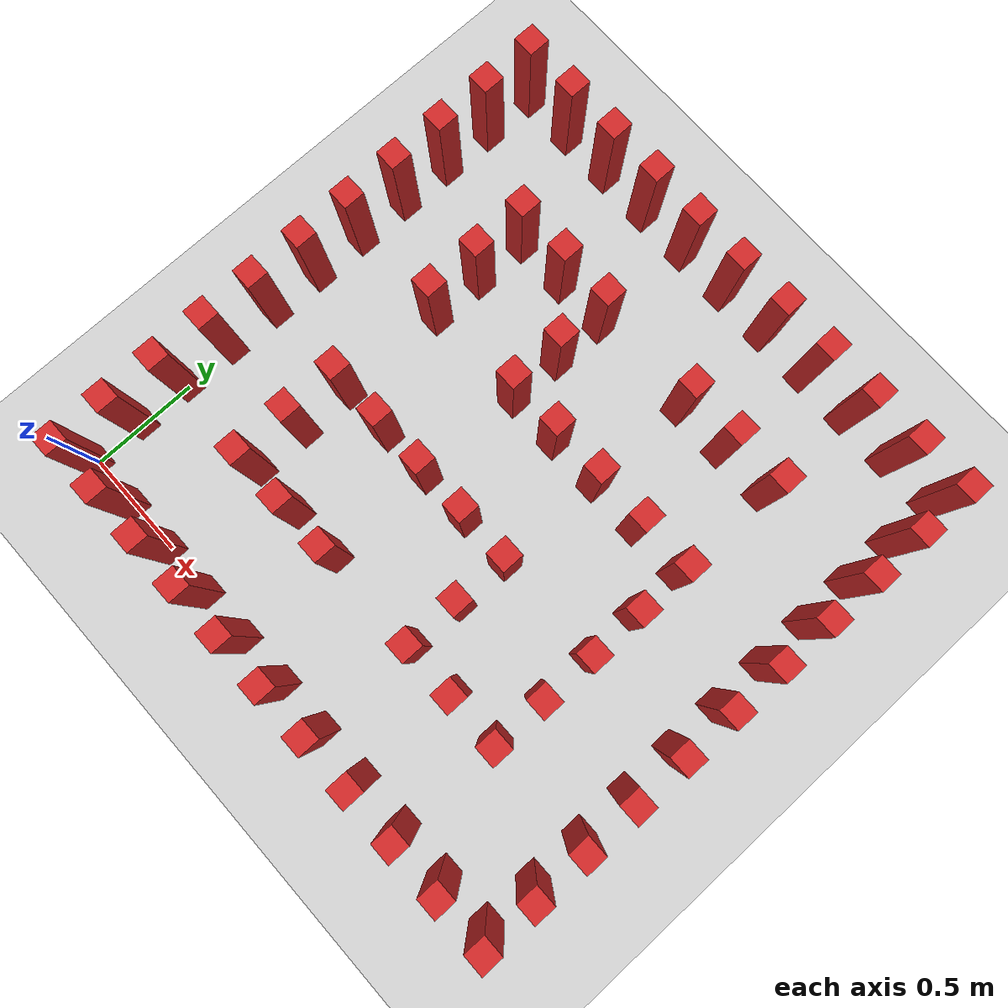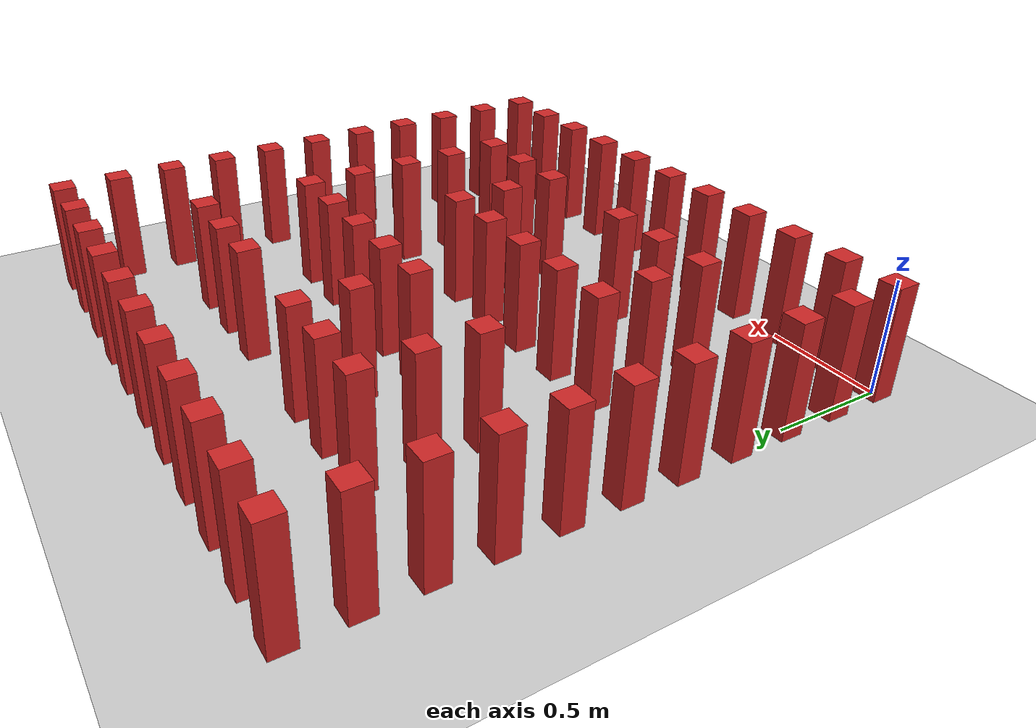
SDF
<sdf version="1.6">
 <world name="maze_random">
  <include><uri>model://sun</uri></include>
  <include><uri>model://ground_plane</uri></include>
  <model name="maze_wall_0">
   <static>true</static>
   <link name="link">
    <collision name="collision"><geometry><box><size>0.1 0.1 0.5</size></box></geometry></collision>
    <visual name="visual">
     <geometry><box><size>0.1 0.1 0.5</size></box></geometry>
     <material>
      <script><uri>file://media/materials/scripts/gazebo.material</uri><name>Gazebo/Red</name></script>
     </material>
    </visual>
   </link>
   <pose>0.0 0.0 0.25 0 0 0</pose>
  </model>
  <model name="maze_wall_1">
   <static>true</static>
   <link name="link">
    <collision name="collision"><geometry><box><size>0.1 0.1 0.5</size></box></geometry></collision>
    <visual name="visual">
     <geometry><box><size>0.1 0.1 0.5</size></box></geometry>
     <material>
      <script><uri>file://media/materials/scripts/gazebo.material</uri><name>Gazebo/Red</name></script>
     </material>
    </visual>
   </link>
   <pose>0.25 0.0 0.25 0 0 0</pose>
  </model>
  <model name="maze_wall_2">
   <static>true</static>
   <link name="link">
    <collision name="collision"><geometry><box><size>0.1 0.1 0.5</size></box></geometry></collision>
    <visual name="visual">
     <geometry><box><size>0.1 0.1 0.5</size></box></geometry>
     <material>
      <script><uri>file://media/materials/scripts/gazebo.material</uri><name>Gazebo/Red</name></script>
     </material>
    </visual>
   </link>
   <pose>0.5 0.0 0.25 0 0 0</pose>
  </model>
  <model name="maze_wall_3">
   <static>true</static>
   <link name="link">
    <collision name="collision"><geometry><box><size>0.1 0.1 0.5</size></box></geometry></collision>
    <visual name="visual">
     <geometry><box><size>0.1 0.1 0.5</size></box></geometry>
     <material>
      <script><uri>file://media/materials/scripts/gazebo.material</uri><name>Gazebo/Red</name></script>
     </material>
    </visual>
   </link>
   <pose>0.75 0.0 0.25 0 0 0</pose>
  </model>
  <model name="maze_wall_4">
   <static>true</static>
   <link name="link">
    <collision name="collision"><geometry><box><size>0.1 0.1 0.5</size></box></geometry></collision>
    <visual name="visual">
     <geometry><box><size>0.1 0.1 0.5</size></box></geometry>
     <material>
      <script><uri>file://media/materials/scripts/gazebo.material</uri><name>Gazebo/Red</name></script>
     </material>
    </visual>
   </link>
   <pose>1.0 0.0 0.25 0 0 0</pose>
  </model>
  <model name="maze_wall_5">
   <static>true</static>
   <link name="link">
    <collision name="collision"><geometry><box><size>0.1 0.1 0.5</size></box></geometry></collision>
    <visual name="visual">
     <geometry><box><size>0.1 0.1 0.5</size></box></geometry>
     <material>
      <script><uri>file://media/materials/scripts/gazebo.material</uri><name>Gazebo/Red</name></script>
     </material>
    </visual>
   </link>
   <pose>1.25 0.0 0.25 0 0 0</pose>
  </model>
  <model name="maze_wall_6">
   <static>true</static>
   <link name="link">
    <collision name="collision"><geometry><box><size>0.1 0.1 0.5</size></box></geometry></collision>
    <visual name="visual">
     <geometry><box><size>0.1 0.1 0.5</size></box></geometry>
     <material>
      <script><uri>file://media/materials/scripts/gazebo.material</uri><name>Gazebo/Red</name></script>
     </material>
    </visual>
   </link>
   <pose>1.5 0.0 0.25 0 0 0</pose>
  </model>
  <model name="maze_wall_7">
   <static>true</static>
   <link name="link">
    <collision name="collision"><geometry><box><size>0.1 0.1 0.5</size></box></geometry></collision>
    <visual name="visual">
     <geometry><box><size>0.1 0.1 0.5</size></box></geometry>
     <material>
      <script><uri>file://media/materials/scripts/gazebo.material</uri><name>Gazebo/Red</name></script>
     </material>
    </visual>
   </link>
   <pose>1.75 0.0 0.25 0 0 0</pose>
  </model>
  <model name="maze_wall_8">
   <static>true</static>
   <link name="link">
    <collision name="collision"><geometry><box><size>0.1 0.1 0.5</size></box></geometry></collision>
    <visual name="visual">
     <geometry><box><size>0.1 0.1 0.5</size></box></geometry>
     <material>
      <script><uri>file://media/materials/scripts/gazebo.material</uri><name>Gazebo/Red</name></script>
     </material>
    </visual>
   </link>
   <pose>2.0 0.0 0.25 0 0 0</pose>
  </model>
  <model name="maze_wall_9">
   <static>true</static>
   <link name="link">
    <collision name="collision"><geometry><box><size>0.1 0.1 0.5</size></box></geometry></collision>
    <visual name="visual">
     <geometry><box><size>0.1 0.1 0.5</size></box></geometry>
     <material>
      <script><uri>file://media/materials/scripts/gazebo.material</uri><name>Gazebo/Red</name></script>
     </material>
    </visual>
   </link>
   <pose>2.25 0.0 0.25 0 0 0</pose>
  </model>
  <model name="maze_wall_10">
   <static>true</static>
   <link name="link">
    <collision name="collision"><geometry><box><size>0.1 0.1 0.5</size></box></geometry></collision>
    <visual name="visual">
     <geometry><box><size>0.1 0.1 0.5</size></box></geometry>
     <material>
      <script><uri>file://media/materials/scripts/gazebo.material</uri><name>Gazebo/Red</name></script>
     </material>
    </visual>
   </link>
   <pose>2.5 0.0 0.25 0 0 0</pose>
  </model>
  <model name="maze_wall_11">
   <static>true</static>
   <link name="link">
    <collision name="collision"><geometry><box><size>0.1 0.1 0.5</size></box></geometry></collision>
    <visual name="visual">
     <geometry><box><size>0.1 0.1 0.5</size></box></geometry>
     <material>
      <script><uri>file://media/materials/scripts/gazebo.material</uri><name>Gazebo/Red</name></script>
     </material>
    </visual>
   </link>
   <pose>0.0 0.25 0.25 0 0 0</pose>
  </model>
  <model name="maze_wall_12">
   <static>true</static>
   <link name="link">
    <collision name="collision"><geometry><box><size>0.1 0.1 0.5</size></box></geometry></collision>
    <visual name="visual">
     <geometry><box><size>0.1 0.1 0.5</size></box></geometry>
     <material>
      <script><uri>file://media/materials/scripts/gazebo.material</uri><name>Gazebo/Red</name></script>
     </material>
    </visual>
   </link>
   <pose>2.5 0.25 0.25 0 0 0</pose>
  </model>
  <model name="maze_wall_13">
   <static>true</static>
   <link name="link">
    <collision name="collision"><geometry><box><size>0.1 0.1 0.5</size></box></geometry></collision>
    <visual name="visual">
     <geometry><box><size>0.1 0.1 0.5</size></box></geometry>
     <material>
      <script><uri>file://media/materials/scripts/gazebo.material</uri><name>Gazebo/Red</name></script>
     </material>
    </visual>
   </link>
   <pose>0.0 0.5 0.25 0 0 0</pose>
  </model>
  <model name="maze_wall_14">
   <static>true</static>
   <link name="link">
    <collision name="collision"><geometry><box><size>0.1 0.1 0.5</size></box></geometry></collision>
    <visual name="visual">
     <geometry><box><size>0.1 0.1 0.5</size></box></geometry>
     <material>
      <script><uri>file://media/materials/scripts/gazebo.material</uri><name>Gazebo/Red</name></script>
     </material>
    </visual>
   </link>
   <pose>0.5 0.5 0.25 0 0 0</pose>
  </model>
  <model name="maze_wall_15">
   <static>true</static>
   <link name="link">
    <collision name="collision"><geometry><box><size>0.1 0.1 0.5</size></box></geometry></collision>
    <visual name="visual">
     <geometry><box><size>0.1 0.1 0.5</size></box></geometry>
     <material>
      <script><uri>file://media/materials/scripts/gazebo.material</uri><name>Gazebo/Red</name></script>
     </material>
    </visual>
   </link>
   <pose>0.75 0.5 0.25 0 0 0</pose>
  </model>
  <model name="maze_wall_16">
   <static>true</static>
   <link name="link">
    <collision name="collision"><geometry><box><size>0.1 0.1 0.5</size></box></geometry></collision>
    <visual name="visual">
     <geometry><box><size>0.1 0.1 0.5</size></box></geometry>
     <material>
      <script><uri>file://media/materials/scripts/gazebo.material</uri><name>Gazebo/Red</name></script>
     </material>
    </visual>
   </link>
   <pose>1.0 0.5 0.25 0 0 0</pose>
  </model>
  <model name="maze_wall_17">
   <static>true</static>
   <link name="link">
    <collision name="collision"><geometry><box><size>0.1 0.1 0.5</size></box></geometry></collision>
    <visual name="visual">
     <geometry><box><size>0.1 0.1 0.5</size></box></geometry>
     <material>
      <script><uri>file://media/materials/scripts/gazebo.material</uri><name>Gazebo/Red</name></script>
     </material>
    </visual>
   </link>
   <pose>1.5 0.5 0.25 0 0 0</pose>
  </model>
  <model name="maze_wall_18">
   <static>true</static>
   <link name="link">
    <collision name="collision"><geometry><box><size>0.1 0.1 0.5</size></box></geometry></collision>
    <visual name="visual">
     <geometry><box><size>0.1 0.1 0.5</size></box></geometry>
     <material>
      <script><uri>file://media/materials/scripts/gazebo.material</uri><name>Gazebo/Red</name></script>
     </material>
    </visual>
   </link>
   <pose>1.75 0.5 0.25 0 0 0</pose>
  </model>
  <model name="maze_wall_19">
   <static>true</static>
   <link name="link">
    <collision name="collision"><geometry><box><size>0.1 0.1 0.5</size></box></geometry></collision>
    <visual name="visual">
     <geometry><box><size>0.1 0.1 0.5</size></box></geometry>
     <material>
      <script><uri>file://media/materials/scripts/gazebo.material</uri><name>Gazebo/Red</name></script>
     </material>
    </visual>
   </link>
   <pose>2.0 0.5 0.25 0 0 0</pose>
  </model>
  <model name="maze_wall_20">
   <static>true</static>
   <link name="link">
    <collision name="collision"><geometry><box><size>0.1 0.1 0.5</size></box></geometry></collision>
    <visual name="visual">
     <geometry><box><size>0.1 0.1 0.5</size></box></geometry>
     <material>
      <script><uri>file://media/materials/scripts/gazebo.material</uri><name>Gazebo/Red</name></script>
     </material>
    </visual>
   </link>
   <pose>2.5 0.5 0.25 0 0 0</pose>
  </model>
  <model name="maze_wall_21">
   <static>true</static>
   <link name="link">
    <collision name="collision"><geometry><box><size>0.1 0.1 0.5</size></box></geometry></collision>
    <visual name="visual">
     <geometry><box><size>0.1 0.1 0.5</size></box></geometry>
     <material>
      <script><uri>file://media/materials/scripts/gazebo.material</uri><name>Gazebo/Red</name></script>
     </material>
    </visual>
   </link>
   <pose>0.0 0.75 0.25 0 0 0</pose>
  </model>
  <model name="maze_wall_22">
   <static>true</static>
   <link name="link">
    <collision name="collision"><geometry><box><size>0.1 0.1 0.5</size></box></geometry></collision>
    <visual name="visual">
     <geometry><box><size>0.1 0.1 0.5</size></box></geometry>
     <material>
      <script><uri>file://media/materials/scripts/gazebo.material</uri><name>Gazebo/Red</name></script>
     </material>
    </visual>
   </link>
   <pose>0.5 0.75 0.25 0 0 0</pose>
  </model>
  <model name="maze_wall_23">
   <static>true</static>
   <link name="link">
    <collision name="collision"><geometry><box><size>0.1 0.1 0.5</size></box></geometry></collision>
    <visual name="visual">
     <geometry><box><size>0.1 0.1 0.5</size></box></geometry>
     <material>
      <script><uri>file://media/materials/scripts/gazebo.material</uri><name>Gazebo/Red</name></script>
     </material>
    </visual>
   </link>
   <pose>1.5 0.75 0.25 0 0 0</pose>
  </model>
  <model name="maze_wall_24">
   <static>true</static>
   <link name="link">
    <collision name="collision"><geometry><box><size>0.1 0.1 0.5</size></box></geometry></collision>
    <visual name="visual">
     <geometry><box><size>0.1 0.1 0.5</size></box></geometry>
     <material>
      <script><uri>file://media/materials/scripts/gazebo.material</uri><name>Gazebo/Red</name></script>
     </material>
    </visual>
   </link>
   <pose>2.0 0.75 0.25 0 0 0</pose>
  </model>
  <model name="maze_wall_25">
   <static>true</static>
   <link name="link">
    <collision name="collision"><geometry><box><size>0.1 0.1 0.5</size></box></geometry></collision>
    <visual name="visual">
     <geometry><box><size>0.1 0.1 0.5</size></box></geometry>
     <material>
      <script><uri>file://media/materials/scripts/gazebo.material</uri><name>Gazebo/Red</name></script>
     </material>
    </visual>
   </link>
   <pose>2.5 0.75 0.25 0 0 0</pose>
  </model>
  <model name="maze_wall_26">
   <static>true</static>
   <link name="link">
    <collision name="collision"><geometry><box><size>0.1 0.1 0.5</size></box></geometry></collision>
    <visual name="visual">
     <geometry><box><size>0.1 0.1 0.5</size></box></geometry>
     <material>
      <script><uri>file://media/materials/scripts/gazebo.material</uri><name>Gazebo/Red</name></script>
     </material>
    </visual>
   </link>
   <pose>0.0 1.0 0.25 0 0 0</pose>
  </model>
  <model name="maze_wall_27">
   <static>true</static>
   <link name="link">
    <collision name="collision"><geometry><box><size>0.1 0.1 0.5</size></box></geometry></collision>
    <visual name="visual">
     <geometry><box><size>0.1 0.1 0.5</size></box></geometry>
     <material>
      <script><uri>file://media/materials/scripts/gazebo.material</uri><name>Gazebo/Red</name></script>
     </material>
    </visual>
   </link>
   <pose>0.5 1.0 0.25 0 0 0</pose>
  </model>
  <model name="maze_wall_28">
   <static>true</static>
   <link name="link">
    <collision name="collision"><geometry><box><size>0.1 0.1 0.5</size></box></geometry></collision>
    <visual name="visual">
     <geometry><box><size>0.1 0.1 0.5</size></box></geometry>
     <material>
      <script><uri>file://media/materials/scripts/gazebo.material</uri><name>Gazebo/Red</name></script>
     </material>
    </visual>
   </link>
   <pose>0.75 1.0 0.25 0 0 0</pose>
  </model>
  <model name="maze_wall_29">
   <static>true</static>
   <link name="link">
    <collision name="collision"><geometry><box><size>0.1 0.1 0.5</size></box></geometry></collision>
    <visual name="visual">
     <geometry><box><size>0.1 0.1 0.5</size></box></geometry>
     <material>
      <script><uri>file://media/materials/scripts/gazebo.material</uri><name>Gazebo/Red</name></script>
     </material>
    </visual>
   </link>
   <pose>1.0 1.0 0.25 0 0 0</pose>
  </model>
  <model name="maze_wall_30">
   <static>true</static>
   <link name="link">
    <collision name="collision"><geometry><box><size>0.1 0.1 0.5</size></box></geometry></collision>
    <visual name="visual">
     <geometry><box><size>0.1 0.1 0.5</size></box></geometry>
     <material>
      <script><uri>file://media/materials/scripts/gazebo.material</uri><name>Gazebo/Red</name></script>
     </material>
    </visual>
   </link>
   <pose>1.25 1.0 0.25 0 0 0</pose>
  </model>
  <model name="maze_wall_31">
   <static>true</static>
   <link name="link">
    <collision name="collision"><geometry><box><size>0.1 0.1 0.5</size></box></geometry></collision>
    <visual name="visual">
     <geometry><box><size>0.1 0.1 0.5</size></box></geometry>
     <material>
      <script><uri>file://media/materials/scripts/gazebo.material</uri><name>Gazebo/Red</name></script>
     </material>
    </visual>
   </link>
   <pose>1.5 1.0 0.25 0 0 0</pose>
  </model>
  <model name="maze_wall_32">
   <static>true</static>
   <link name="link">
    <collision name="collision"><geometry><box><size>0.1 0.1 0.5</size></box></geometry></collision>
    <visual name="visual">
     <geometry><box><size>0.1 0.1 0.5</size></box></geometry>
     <material>
      <script><uri>file://media/materials/scripts/gazebo.material</uri><name>Gazebo/Red</name></script>
     </material>
    </visual>
   </link>
   <pose>2.0 1.0 0.25 0 0 0</pose>
  </model>
  <model name="maze_wall_33">
   <static>true</static>
   <link name="link">
    <collision name="collision"><geometry><box><size>0.1 0.1 0.5</size></box></geometry></collision>
    <visual name="visual">
     <geometry><box><size>0.1 0.1 0.5</size></box></geometry>
     <material>
      <script><uri>file://media/materials/scripts/gazebo.material</uri><name>Gazebo/Red</name></script>
     </material>
    </visual>
   </link>
   <pose>2.5 1.0 0.25 0 0 0</pose>
  </model>
  <model name="maze_wall_34">
   <static>true</static>
   <link name="link">
    <collision name="collision"><geometry><box><size>0.1 0.1 0.5</size></box></geometry></collision>
    <visual name="visual">
     <geometry><box><size>0.1 0.1 0.5</size></box></geometry>
     <material>
      <script><uri>file://media/materials/scripts/gazebo.material</uri><name>Gazebo/Red</name></script>
     </material>
    </visual>
   </link>
   <pose>0.0 1.25 0.25 0 0 0</pose>
  </model>
  <model name="maze_wall_35">
   <static>true</static>
   <link name="link">
    <collision name="collision"><geometry><box><size>0.1 0.1 0.5</size></box></geometry></collision>
    <visual name="visual">
     <geometry><box><size>0.1 0.1 0.5</size></box></geometry>
     <material>
      <script><uri>file://media/materials/scripts/gazebo.material</uri><name>Gazebo/Red</name></script>
     </material>
    </visual>
   </link>
   <pose>2.0 1.25 0.25 0 0 0</pose>
  </model>
  <model name="maze_wall_36">
   <static>true</static>
   <link name="link">
    <collision name="collision"><geometry><box><size>0.1 0.1 0.5</size></box></geometry></collision>
    <visual name="visual">
     <geometry><box><size>0.1 0.1 0.5</size></box></geometry>
     <material>
      <script><uri>file://media/materials/scripts/gazebo.material</uri><name>Gazebo/Red</name></script>
     </material>
    </visual>
   </link>
   <pose>2.5 1.25 0.25 0 0 0</pose>
  </model>
  <model name="maze_wall_37">
   <static>true</static>
   <link name="link">
    <collision name="collision"><geometry><box><size>0.1 0.1 0.5</size></box></geometry></collision>
    <visual name="visual">
     <geometry><box><size>0.1 0.1 0.5</size></box></geometry>
     <material>
      <script><uri>file://media/materials/scripts/gazebo.material</uri><name>Gazebo/Red</name></script>
     </material>
    </visual>
   </link>
   <pose>0.0 1.5 0.25 0 0 0</pose>
  </model>
  <model name="maze_wall_38">
   <static>true</static>
   <link name="link">
    <collision name="collision"><geometry><box><size>0.1 0.1 0.5</size></box></geometry></collision>
    <visual name="visual">
     <geometry><box><size>0.1 0.1 0.5</size></box></geometry>
     <material>
      <script><uri>file://media/materials/scripts/gazebo.material</uri><name>Gazebo/Red</name></script>
     </material>
    </visual>
   </link>
   <pose>0.5 1.5 0.25 0 0 0</pose>
  </model>
  <model name="maze_wall_39">
   <static>true</static>
   <link name="link">
    <collision name="collision"><geometry><box><size>0.1 0.1 0.5</size></box></geometry></collision>
    <visual name="visual">
     <geometry><box><size>0.1 0.1 0.5</size></box></geometry>
     <material>
      <script><uri>file://media/materials/scripts/gazebo.material</uri><name>Gazebo/Red</name></script>
     </material>
    </visual>
   </link>
   <pose>1.0 1.5 0.25 0 0 0</pose>
  </model>
  <model name="maze_wall_40">
   <static>true</static>
   <link name="link">
    <collision name="collision"><geometry><box><size>0.1 0.1 0.5</size></box></geometry></collision>
    <visual name="visual">
     <geometry><box><size>0.1 0.1 0.5</size></box></geometry>
     <material>
      <script><uri>file://media/materials/scripts/gazebo.material</uri><name>Gazebo/Red</name></script>
     </material>
    </visual>
   </link>
   <pose>1.25 1.5 0.25 0 0 0</pose>
  </model>
  <model name="maze_wall_41">
   <static>true</static>
   <link name="link">
    <collision name="collision"><geometry><box><size>0.1 0.1 0.5</size></box></geometry></collision>
    <visual name="visual">
     <geometry><box><size>0.1 0.1 0.5</size></box></geometry>
     <material>
      <script><uri>file://media/materials/scripts/gazebo.material</uri><name>Gazebo/Red</name></script>
     </material>
    </visual>
   </link>
   <pose>1.5 1.5 0.25 0 0 0</pose>
  </model>
  <model name="maze_wall_42">
   <static>true</static>
   <link name="link">
    <collision name="collision"><geometry><box><size>0.1 0.1 0.5</size></box></geometry></collision>
    <visual name="visual">
     <geometry><box><size>0.1 0.1 0.5</size></box></geometry>
     <material>
      <script><uri>file://media/materials/scripts/gazebo.material</uri><name>Gazebo/Red</name></script>
     </material>
    </visual>
   </link>
   <pose>1.75 1.5 0.25 0 0 0</pose>
  </model>
  <model name="maze_wall_43">
   <static>true</static>
   <link name="link">
    <collision name="collision"><geometry><box><size>0.1 0.1 0.5</size></box></geometry></collision>
    <visual name="visual">
     <geometry><box><size>0.1 0.1 0.5</size></box></geometry>
     <material>
      <script><uri>file://media/materials/scripts/gazebo.material</uri><name>Gazebo/Red</name></script>
     </material>
    </visual>
   </link>
   <pose>2.0 1.5 0.25 0 0 0</pose>
  </model>
  <model name="maze_wall_44">
   <static>true</static>
   <link name="link">
    <collision name="collision"><geometry><box><size>0.1 0.1 0.5</size></box></geometry></collision>
    <visual name="visual">
     <geometry><box><size>0.1 0.1 0.5</size></box></geometry>
     <material>
      <script><uri>file://media/materials/scripts/gazebo.material</uri><name>Gazebo/Red</name></script>
     </material>
    </visual>
   </link>
   <pose>2.5 1.5 0.25 0 0 0</pose>
  </model>
  <model name="maze_wall_45">
   <static>true</static>
   <link name="link">
    <collision name="collision"><geometry><box><size>0.1 0.1 0.5</size></box></geometry></collision>
    <visual name="visual">
     <geometry><box><size>0.1 0.1 0.5</size></box></geometry>
     <material>
      <script><uri>file://media/materials/scripts/gazebo.material</uri><name>Gazebo/Red</name></script>
     </material>
    </visual>
   </link>
   <pose>0.0 1.75 0.25 0 0 0</pose>
  </model>
  <model name="maze_wall_46">
   <static>true</static>
   <link name="link">
    <collision name="collision"><geometry><box><size>0.1 0.1 0.5</size></box></geometry></collision>
    <visual name="visual">
     <geometry><box><size>0.1 0.1 0.5</size></box></geometry>
     <material>
      <script><uri>file://media/materials/scripts/gazebo.material</uri><name>Gazebo/Red</name></script>
     </material>
    </visual>
   </link>
   <pose>0.5 1.75 0.25 0 0 0</pose>
  </model>
  <model name="maze_wall_47">
   <static>true</static>
   <link name="link">
    <collision name="collision"><geometry><box><size>0.1 0.1 0.5</size></box></geometry></collision>
    <visual name="visual">
     <geometry><box><size>0.1 0.1 0.5</size></box></geometry>
     <material>
      <script><uri>file://media/materials/scripts/gazebo.material</uri><name>Gazebo/Red</name></script>
     </material>
    </visual>
   </link>
   <pose>1.0 1.75 0.25 0 0 0</pose>
  </model>
  <model name="maze_wall_48">
   <static>true</static>
   <link name="link">
    <collision name="collision"><geometry><box><size>0.1 0.1 0.5</size></box></geometry></collision>
    <visual name="visual">
     <geometry><box><size>0.1 0.1 0.5</size></box></geometry>
     <material>
      <script><uri>file://media/materials/scripts/gazebo.material</uri><name>Gazebo/Red</name></script>
     </material>
    </visual>
   </link>
   <pose>2.5 1.75 0.25 0 0 0</pose>
  </model>
  <model name="maze_wall_49">
   <static>true</static>
   <link name="link">
    <collision name="collision"><geometry><box><size>0.1 0.1 0.5</size></box></geometry></collision>
    <visual name="visual">
     <geometry><box><size>0.1 0.1 0.5</size></box></geometry>
     <material>
      <script><uri>file://media/materials/scripts/gazebo.material</uri><name>Gazebo/Red</name></script>
     </material>
    </visual>
   </link>
   <pose>0.0 2.0 0.25 0 0 0</pose>
  </model>
  <model name="maze_wall_50">
   <static>true</static>
   <link name="link">
    <collision name="collision"><geometry><box><size>0.1 0.1 0.5</size></box></geometry></collision>
    <visual name="visual">
     <geometry><box><size>0.1 0.1 0.5</size></box></geometry>
     <material>
      <script><uri>file://media/materials/scripts/gazebo.material</uri><name>Gazebo/Red</name></script>
     </material>
    </visual>
   </link>
   <pose>0.5 2.0 0.25 0 0 0</pose>
  </model>
  <model name="maze_wall_51">
   <static>true</static>
   <link name="link">
    <collision name="collision"><geometry><box><size>0.1 0.1 0.5</size></box></geometry></collision>
    <visual name="visual">
     <geometry><box><size>0.1 0.1 0.5</size></box></geometry>
     <material>
      <script><uri>file://media/materials/scripts/gazebo.material</uri><name>Gazebo/Red</name></script>
     </material>
    </visual>
   </link>
   <pose>0.75 2.0 0.25 0 0 0</pose>
  </model>
  <model name="maze_wall_52">
   <static>true</static>
   <link name="link">
    <collision name="collision"><geometry><box><size>0.1 0.1 0.5</size></box></geometry></collision>
    <visual name="visual">
     <geometry><box><size>0.1 0.1 0.5</size></box></geometry>
     <material>
      <script><uri>file://media/materials/scripts/gazebo.material</uri><name>Gazebo/Red</name></script>
     </material>
    </visual>
   </link>
   <pose>1.0 2.0 0.25 0 0 0</pose>
  </model>
  <model name="maze_wall_53">
   <static>true</static>
   <link name="link">
    <collision name="collision"><geometry><box><size>0.1 0.1 0.5</size></box></geometry></collision>
    <visual name="visual">
     <geometry><box><size>0.1 0.1 0.5</size></box></geometry>
     <material>
      <script><uri>file://media/materials/scripts/gazebo.material</uri><name>Gazebo/Red</name></script>
     </material>
    </visual>
   </link>
   <pose>1.5 2.0 0.25 0 0 0</pose>
  </model>
  <model name="maze_wall_54">
   <static>true</static>
   <link name="link">
    <collision name="collision"><geometry><box><size>0.1 0.1 0.5</size></box></geometry></collision>
    <visual name="visual">
     <geometry><box><size>0.1 0.1 0.5</size></box></geometry>
     <material>
      <script><uri>file://media/materials/scripts/gazebo.material</uri><name>Gazebo/Red</name></script>
     </material>
    </visual>
   </link>
   <pose>1.75 2.0 0.25 0 0 0</pose>
  </model>
  <model name="maze_wall_55">
   <static>true</static>
   <link name="link">
    <collision name="collision"><geometry><box><size>0.1 0.1 0.5</size></box></geometry></collision>
    <visual name="visual">
     <geometry><box><size>0.1 0.1 0.5</size></box></geometry>
     <material>
      <script><uri>file://media/materials/scripts/gazebo.material</uri><name>Gazebo/Red</name></script>
     </material>
    </visual>
   </link>
   <pose>2.0 2.0 0.25 0 0 0</pose>
  </model>
  <model name="maze_wall_56">
   <static>true</static>
   <link name="link">
    <collision name="collision"><geometry><box><size>0.1 0.1 0.5</size></box></geometry></collision>
    <visual name="visual">
     <geometry><box><size>0.1 0.1 0.5</size></box></geometry>
     <material>
      <script><uri>file://media/materials/scripts/gazebo.material</uri><name>Gazebo/Red</name></script>
     </material>
    </visual>
   </link>
   <pose>2.5 2.0 0.25 0 0 0</pose>
  </model>
  <model name="maze_wall_57">
   <static>true</static>
   <link name="link">
    <collision name="collision"><geometry><box><size>0.1 0.1 0.5</size></box></geometry></collision>
    <visual name="visual">
     <geometry><box><size>0.1 0.1 0.5</size></box></geometry>
     <material>
      <script><uri>file://media/materials/scripts/gazebo.material</uri><name>Gazebo/Red</name></script>
     </material>
    </visual>
   </link>
   <pose>0.0 2.25 0.25 0 0 0</pose>
  </model>
  <model name="maze_wall_58">
   <static>true</static>
   <link name="link">
    <collision name="collision"><geometry><box><size>0.1 0.1 0.5</size></box></geometry></collision>
    <visual name="visual">
     <geometry><box><size>0.1 0.1 0.5</size></box></geometry>
     <material>
      <script><uri>file://media/materials/scripts/gazebo.material</uri><name>Gazebo/Red</name></script>
     </material>
    </visual>
   </link>
   <pose>2.5 2.25 0.25 0 0 0</pose>
  </model>
  <model name="maze_wall_59">
   <static>true</static>
   <link name="link">
    <collision name="collision"><geometry><box><size>0.1 0.1 0.5</size></box></geometry></collision>
    <visual name="visual">
     <geometry><box><size>0.1 0.1 0.5</size></box></geometry>
     <material>
      <script><uri>file://media/materials/scripts/gazebo.material</uri><name>Gazebo/Red</name></script>
     </material>
    </visual>
   </link>
   <pose>0.0 2.5 0.25 0 0 0</pose>
  </model>
  <model name="maze_wall_60">
   <static>true</static>
   <link name="link">
    <collision name="collision"><geometry><box><size>0.1 0.1 0.5</size></box></geometry></collision>
    <visual name="visual">
     <geometry><box><size>0.1 0.1 0.5</size></box></geometry>
     <material>
      <script><uri>file://media/materials/scripts/gazebo.material</uri><name>Gazebo/Red</name></script>
     </material>
    </visual>
   </link>
   <pose>0.25 2.5 0.25 0 0 0</pose>
  </model>
  <model name="maze_wall_61">
   <static>true</static>
   <link name="link">
    <collision name="collision"><geometry><box><size>0.1 0.1 0.5</size></box></geometry></collision>
    <visual name="visual">
     <geometry><box><size>0.1 0.1 0.5</size></box></geometry>
     <material>
      <script><uri>file://media/materials/scripts/gazebo.material</uri><name>Gazebo/Red</name></script>
     </material>
    </visual>
   </link>
   <pose>0.5 2.5 0.25 0 0 0</pose>
  </model>
  <model name="maze_wall_62">
   <static>true</static>
   <link name="link">
    <collision name="collision"><geometry><box><size>0.1 0.1 0.5</size></box></geometry></collision>
    <visual name="visual">
     <geometry><box><size>0.1 0.1 0.5</size></box></geometry>
     <material>
      <script><uri>file://media/materials/scripts/gazebo.material</uri><name>Gazebo/Red</name></script>
     </material>
    </visual>
   </link>
   <pose>0.75 2.5 0.25 0 0 0</pose>
  </model>
  <model name="maze_wall_63">
   <static>true</static>
   <link name="link">
    <collision name="collision"><geometry><box><size>0.1 0.1 0.5</size></box></geometry></collision>
    <visual name="visual">
     <geometry><box><size>0.1 0.1 0.5</size></box></geometry>
     <material>
      <script><uri>file://media/materials/scripts/gazebo.material</uri><name>Gazebo/Red</name></script>
     </material>
    </visual>
   </link>
   <pose>1.0 2.5 0.25 0 0 0</pose>
  </model>
  <model name="maze_wall_64">
   <static>true</static>
   <link name="link">
    <collision name="collision"><geometry><box><size>0.1 0.1 0.5</size></box></geometry></collision>
    <visual name="visual">
     <geometry><box><size>0.1 0.1 0.5</size></box></geometry>
     <material>
      <script><uri>file://media/materials/scripts/gazebo.material</uri><name>Gazebo/Red</name></script>
     </material>
    </visual>
   </link>
   <pose>1.25 2.5 0.25 0 0 0</pose>
  </model>
  <model name="maze_wall_65">
   <static>true</static>
   <link name="link">
    <collision name="collision"><geometry><box><size>0.1 0.1 0.5</size></box></geometry></collision>
    <visual name="visual">
     <geometry><box><size>0.1 0.1 0.5</size></box></geometry>
     <material>
      <script><uri>file://media/materials/scripts/gazebo.material</uri><name>Gazebo/Red</name></script>
     </material>
    </visual>
   </link>
   <pose>1.5 2.5 0.25 0 0 0</pose>
  </model>
  <model name="maze_wall_66">
   <static>true</static>
   <link name="link">
    <collision name="collision"><geometry><box><size>0.1 0.1 0.5</size></box></geometry></collision>
    <visual name="visual">
     <geometry><box><size>0.1 0.1 0.5</size></box></geometry>
     <material>
      <script><uri>file://media/materials/scripts/gazebo.material</uri><name>Gazebo/Red</name></script>
     </material>
    </visual>
   </link>
   <pose>1.75 2.5 0.25 0 0 0</pose>
  </model>
  <model name="maze_wall_67">
   <static>true</static>
   <link name="link">
    <collision name="collision"><geometry><box><size>0.1 0.1 0.5</size></box></geometry></collision>
    <visual name="visual">
     <geometry><box><size>0.1 0.1 0.5</size></box></geometry>
     <material>
      <script><uri>file://media/materials/scripts/gazebo.material</uri><name>Gazebo/Red</name></script>
     </material>
    </visual>
   </link>
   <pose>2.0 2.5 0.25 0 0 0</pose>
  </model>
  <model name="maze_wall_68">
   <static>true</static>
   <link name="link">
    <collision name="collision"><geometry><box><size>0.1 0.1 0.5</size></box></geometry></collision>
    <visual name="visual">
     <geometry><box><size>0.1 0.1 0.5</size></box></geometry>
     <material>
      <script><uri>file://media/materials/scripts/gazebo.material</uri><name>Gazebo/Red</name></script>
     </material>
    </visual>
   </link>
   <pose>2.25 2.5 0.25 0 0 0</pose>
  </model>
  <model name="maze_wall_69">
   <static>true</static>
   <link name="link">
    <collision name="collision"><geometry><box><size>0.1 0.1 0.5</size></box></geometry></collision>
    <visual name="visual">
     <geometry><box><size>0.1 0.1 0.5</size></box></geometry>
     <material>
      <script><uri>file://media/materials/scripts/gazebo.material</uri><name>Gazebo/Red</name></script>
     </material>
    </visual>
   </link>
   <pose>2.5 2.5 0.25 0 0 0</pose>
  </model>
 </world>
</sdf>
